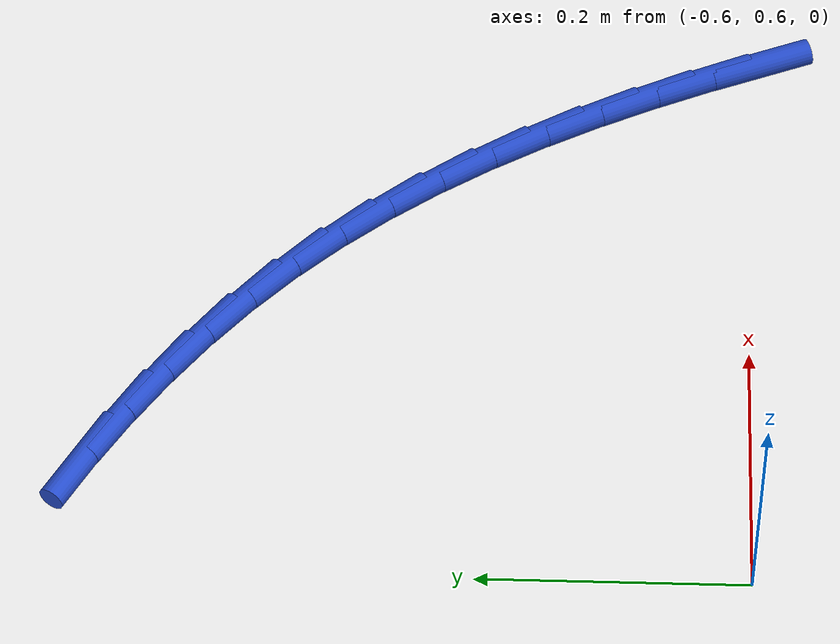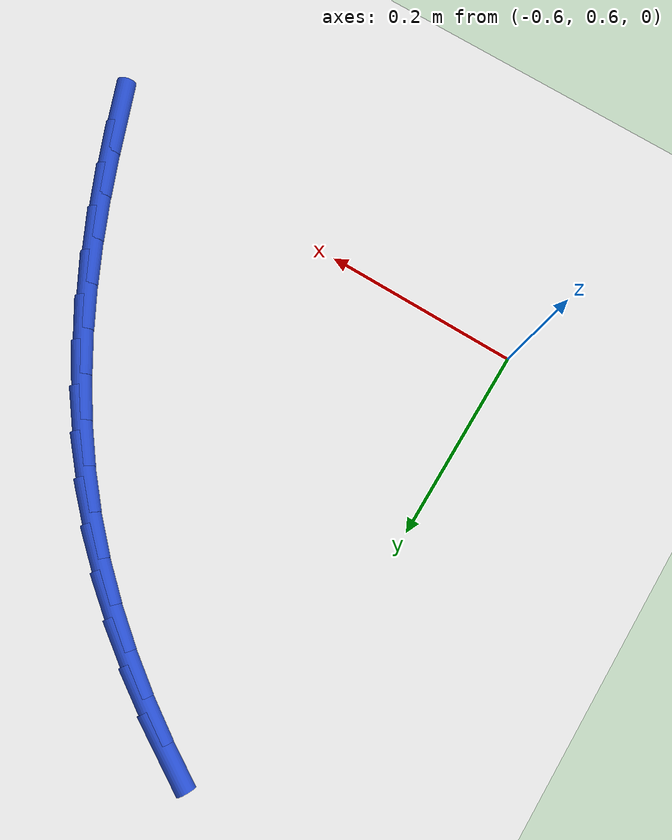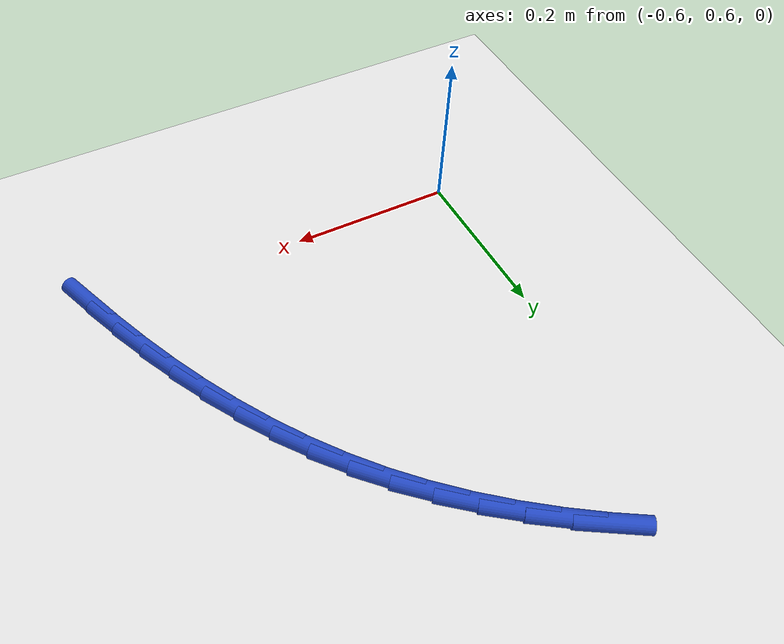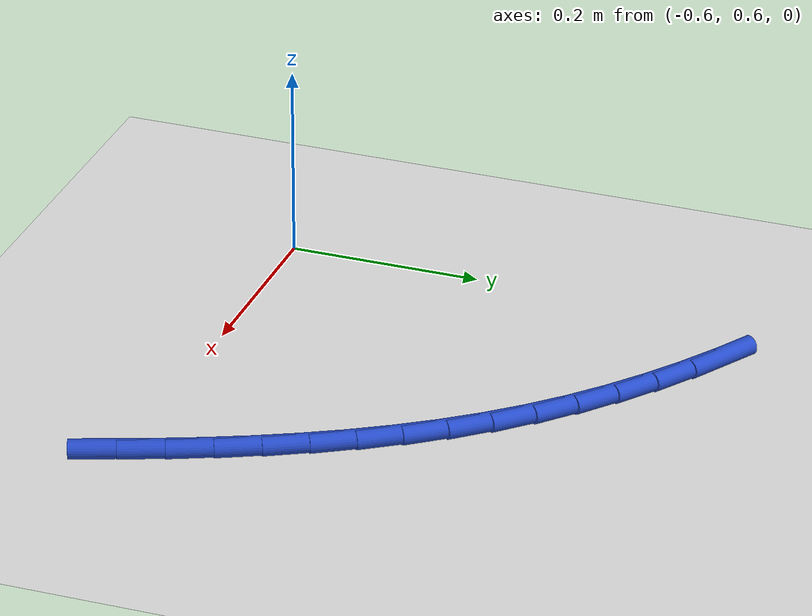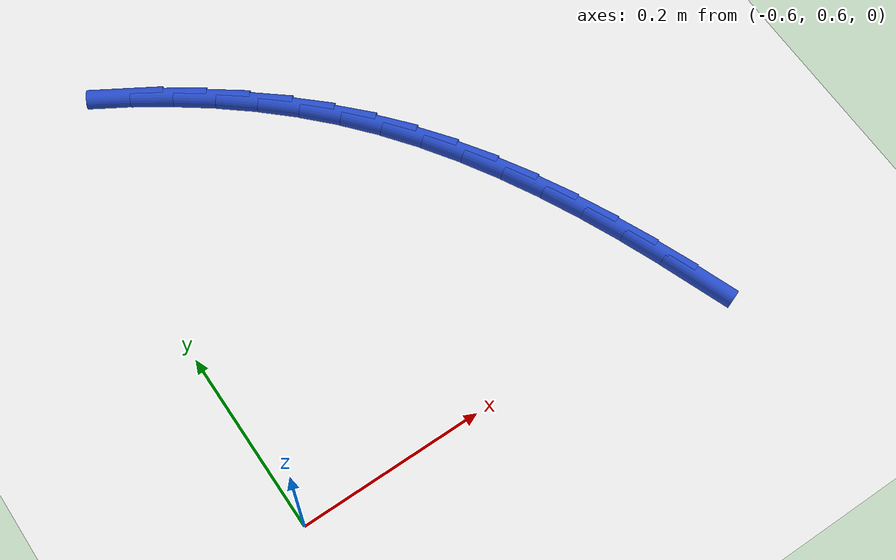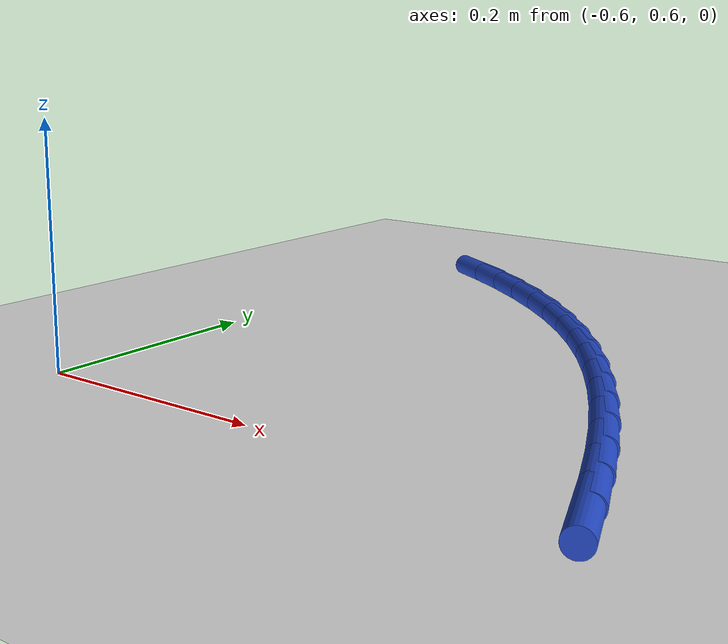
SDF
<sdf version="1.6">
 <world name="default">
  <model name="ground_plane">
   <static>1</static>
   <link name="link">
    <collision name="collision">
     <geometry><plane><normal>0 0 1</normal><size>100 100</size></plane></geometry>
     <surface><friction><ode><mu>100</mu><mu2>50</mu2></ode></friction></surface>
    </collision>
    <visual name="visual">
     <cast_shadows>0</cast_shadows>
     <geometry><plane><normal>0 0 1</normal><size>100 100</size></plane></geometry>
     <material>
      <script><uri>file://media/materials/scripts/gazebo.material</uri><name>Gazebo/WhiteGlow</name></script>
     </material>
    </visual>
   </link>
  </model>
  <model name="line">
   <link name="link_13">
    <pose>-0.13610135213479416 0.5890350819211698 0.01 0 1.57 -1.2088162640019848</pose>
    <collision name="collision">
     <geometry><cylinder><radius>0.01</radius><length>0.08</length></cylinder></geometry>
    </collision>
    <visual name="visual">
     <material>
      <script><name>Gazebo/Blue</name><uri>file://media/materials/scripts/gazebo.material</uri></script>
     </material>
     <geometry><cylinder><radius>0.01</radius><length>0.08</length></cylinder></geometry>
    </visual>
   </link>
   <link name="link_14">
    <pose>-0.15276666340067419 0.6330457648104414 0.01 0 1.57 -1.1799410158548354</pose>
    <collision name="collision">
     <geometry><cylinder><radius>0.01</radius><length>0.08</length></cylinder></geometry>
    </collision>
    <visual name="visual">
     <material>
      <script><name>Gazebo/Blue</name><uri>file://media/materials/scripts/gazebo.material</uri></script>
     </material>
     <geometry><cylinder><radius>0.01</radius><length>0.08</length></cylinder></geometry>
    </visual>
   </link>
   <link name="link_15">
    <pose>-0.17058302234279238 0.6762835723036618 0.01 0 1.57 -1.1470876542077086</pose>
    <collision name="collision">
     <geometry><cylinder><radius>0.01</radius><length>0.08</length></cylinder></geometry>
    </collision>
    <visual name="visual">
     <material>
      <script><name>Gazebo/Blue</name><uri>file://media/materials/scripts/gazebo.material</uri></script>
     </material>
     <geometry><cylinder><radius>0.01</radius><length>0.08</length></cylinder></geometry>
    </visual>
   </link>
   <link name="link_16">
    <pose>-0.1896696299471074 0.7186015612994292 0.01 0 1.57 -1.1100533242488548</pose>
    <collision name="collision">
     <geometry><cylinder><radius>0.01</radius><length>0.08</length></cylinder></geometry>
    </collision>
    <visual name="visual">
     <material>
      <script><name>Gazebo/Blue</name><uri>file://media/materials/scripts/gazebo.material</uri></script>
     </material>
     <geometry><cylinder><radius>0.01</radius><length>0.08</length></cylinder></geometry>
    </visual>
   </link>
   <link name="link_17">
    <pose>-0.21014568719957794 0.7598527886963415 0.01 0 1.57 -1.0686423582017794</pose>
    <collision name="collision">
     <geometry><cylinder><radius>0.01</radius><length>0.08</length></cylinder></geometry>
    </collision>
    <visual name="visual">
     <material>
      <script><name>Gazebo/Blue</name><uri>file://media/materials/scripts/gazebo.material</uri></script>
     </material>
     <geometry><cylinder><radius>0.01</radius><length>0.08</length></cylinder></geometry>
    </visual>
   </link>
   <link name="link_18">
    <pose>-0.23213039508616282 0.7998903113929979 0.01 0 1.57 -1.0226858228537783</pose>
    <collision name="collision">
     <geometry><cylinder><radius>0.01</radius><length>0.08</length></cylinder></geometry>
    </collision>
    <visual name="visual">
     <material>
      <script><name>Gazebo/Blue</name><uri>file://media/materials/scripts/gazebo.material</uri></script>
     </material>
     <geometry><cylinder><radius>0.01</radius><length>0.08</length></cylinder></geometry>
    </visual>
   </link>
   <link name="link_19">
    <pose>-0.25574295459282054 0.838567186287996 0.01 0 1.57 -0.9720667740535098</pose>
    <collision name="collision">
     <geometry><cylinder><radius>0.01</radius><length>0.08</length></cylinder></geometry>
    </collision>
    <visual name="visual">
     <material>
      <script><name>Gazebo/Blue</name><uri>file://media/materials/scripts/gazebo.material</uri></script>
     </material>
     <geometry><cylinder><radius>0.01</radius><length>0.08</length></cylinder></geometry>
    </visual>
   </link>
   <link name="link_20">
    <pose>-0.28110256670551004 0.8757364702799344 0.01 0 1.57 -0.9167510090795917</pose>
    <collision name="collision">
     <geometry><cylinder><radius>0.01</radius><length>0.08</length></cylinder></geometry>
    </collision>
    <visual name="visual">
     <material>
      <script><name>Gazebo/Blue</name><uri>file://media/materials/scripts/gazebo.material</uri></script>
     </material>
     <geometry><cylinder><radius>0.01</radius><length>0.08</length></cylinder></geometry>
    </visual>
   </link>
   <link name="link_21">
    <pose>-0.30832843241019003 0.9112512202674112 0.01 0 1.57 -0.8568508711784869</pose>
    <collision name="collision">
     <geometry><cylinder><radius>0.01</radius><length>0.08</length></cylinder></geometry>
    </collision>
    <visual name="visual">
     <material>
      <script><name>Gazebo/Blue</name><uri>file://media/materials/scripts/gazebo.material</uri></script>
     </material>
     <geometry><cylinder><radius>0.01</radius><length>0.08</length></cylinder></geometry>
    </visual>
   </link>
   <link name="link_22">
    <pose>-0.3375388428029785 0.9449654326588343 0.01 0 1.57 -0.7950104594964325</pose>
    <collision name="collision">
     <geometry><cylinder><radius>0.01</radius><length>0.08</length></cylinder></geometry>
    </collision>
    <visual name="visual">
     <material>
      <script><name>Gazebo/Blue</name><uri>file://media/materials/scripts/gazebo.material</uri></script>
     </material>
     <geometry><cylinder><radius>0.01</radius><length>0.08</length></cylinder></geometry>
    </visual>
   </link>
   <link name="link_23">
    <pose>-0.3687773212004344 0.9768103055844293 0.01 0 1.57 -0.7357627584772974</pose>
    <collision name="collision">
     <geometry><cylinder><radius>0.01</radius><length>0.08</length></cylinder></geometry>
    </collision>
    <visual name="visual">
     <material>
      <script><name>Gazebo/Blue</name><uri>file://media/materials/scripts/gazebo.material</uri></script>
     </material>
     <geometry><cylinder><radius>0.01</radius><length>0.08</length></cylinder></geometry>
    </visual>
   </link>
   <link name="link_24">
    <pose>-0.40195811600002096 1.006850520426177 0.01 0 1.57 -0.6798365404967276</pose>
    <collision name="collision">
     <geometry><cylinder><radius>0.01</radius><length>0.08</length></cylinder></geometry>
    </collision>
    <visual name="visual">
     <material>
      <script><name>Gazebo/Blue</name><uri>file://media/materials/scripts/gazebo.material</uri></script>
     </material>
     <geometry><cylinder><radius>0.01</radius><length>0.08</length></cylinder></geometry>
    </visual>
   </link>
   <link name="link_25">
    <pose>-0.43698262886804506 1.035164023501446 0.01 0 1.57 -0.6274285808751373</pose>
    <collision name="collision">
     <geometry><cylinder><radius>0.01</radius><length>0.08</length></cylinder></geometry>
    </collision>
    <visual name="visual">
     <material>
      <script><name>Gazebo/Blue</name><uri>file://media/materials/scripts/gazebo.material</uri></script>
     </material>
     <geometry><cylinder><radius>0.01</radius><length>0.08</length></cylinder></geometry>
    </visual>
   </link>
   <link name="link_26">
    <pose>-0.4737522614708131 1.0618287611276054 0.01 0 1.57 -0.578630373063824</pose>
    <collision name="collision">
     <geometry><cylinder><radius>0.01</radius><length>0.08</length></cylinder></geometry>
    </collision>
    <visual name="visual">
     <material>
      <script><name>Gazebo/Blue</name><uri>file://media/materials/scripts/gazebo.material</uri></script>
     </material>
     <geometry><cylinder><radius>0.01</radius><length>0.08</length></cylinder></geometry>
    </visual>
   </link>
   <link name="link_27">
    <pose>-0.5121684154746318 1.0869226796220237 0.01 0 1.57 -0.5334468165381331</pose>
    <collision name="collision">
     <geometry><cylinder><radius>0.01</radius><length>0.08</length></cylinder></geometry>
    </collision>
    <visual name="visual">
     <material>
      <script><name>Gazebo/Blue</name><uri>file://media/materials/scripts/gazebo.material</uri></script>
     </material>
     <geometry><cylinder><radius>0.01</radius><length>0.08</length></cylinder></geometry>
    </visual>
   </link>
  </model>
 </world>
</sdf>
